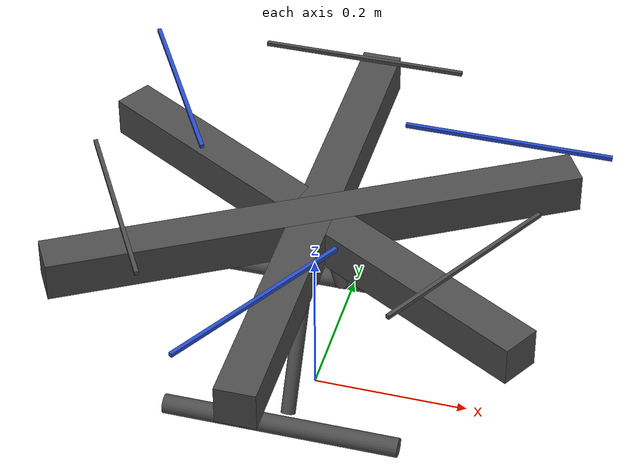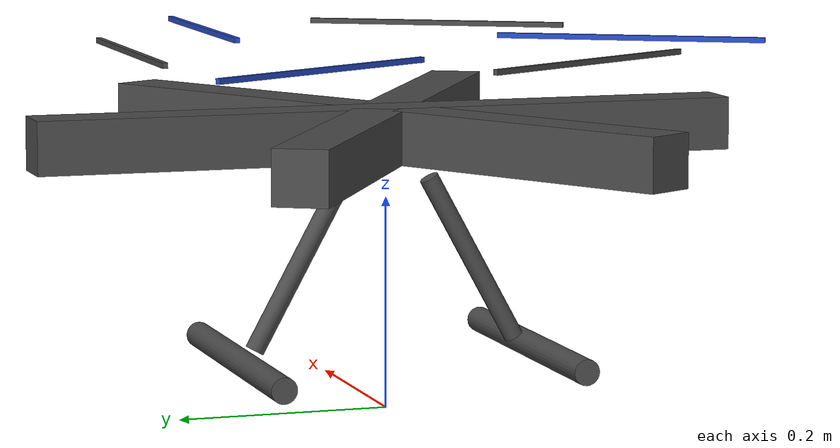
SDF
<sdf version='1.5'>
  <model name='ardvarc_drone'>
    <!-- Body -->
    <pose>0 0 0.26 0 0 0.0</pose>
    <link name='base_link'>
      <pose>0 0 0 0 0 0</pose>
      <inertial>
        <!-- rear reference point X: -100.044mm, CAD offset: 1001.049mm -->
        <!-- top reference point Z: 33.8663mm, CAD offset: 42.8698mm -->
        <pose>0.001005 0 -0.0090035 0 0 0</pose>
        <mass>2.02</mass>
        <inertia>
          <ixx>0.011</ixx>
          <ixy>0</ixy>
          <ixz>0</ixz>
          <iyy>0.015</iyy>
          <iyz>0</iyz>
          <izz>0.021</izz>
        </inertia>
      </inertial>
      <collision name='base_link_collision'>
        <pose>0 0 0.0 0 0 0</pose>
        <geometry>
          <box>
            <size>0.67 0.67 0.15</size>
          </box>
        </geometry>
        <surface>
          <contact>
            <ode>
              <min_depth>0.001</min_depth>
              <max_vel>0</max_vel>
            </ode>
          </contact>
          <friction>
            <ode/>
          </friction>
        </surface>
      </collision>
      <visual name='base_link_visual_1'>
        <pose>0 0 0 0 0 0.52359877559</pose>
        <geometry>
          <box>
            <size>0.67 0.05 0.05</size>
          </box>
        </geometry>
        <material>
          <script>
            <name>Gazebo/DarkGrey</name>
            <uri>file://media/materials/scripts/gazebo.material</uri>
          </script>
        </material>
      </visual>
      <visual name='base_link_visual_2'>
        <pose>0 0 0 0 0 1.57079632679</pose>
        <geometry>
          <box>
            <size>0.67 0.05 0.05</size>
          </box>
        </geometry>
        <material>
          <script>
            <name>Gazebo/DarkGrey</name>
            <uri>file://media/materials/scripts/gazebo.material</uri>
          </script>
        </material>
      </visual>
      <visual name='base_link_visual_3'>
        <pose>0 0 0 0 0 2.61799387799</pose>
        <geometry>
          <box>
            <size>0.67 0.05 0.05</size>
          </box>
        </geometry>
        <material>
          <script>
            <name>Gazebo/DarkGrey</name>
            <uri>file://media/materials/scripts/gazebo.material</uri>
          </script>
        </material>
      </visual>
      <gravity>1</gravity>
      <velocity_decay/>
      <self_collide>0</self_collide>
    </link>

    <link name="camera_link">
      <pose>0.2 0 -0.1 0 1.57 3.14159</pose>
      <inertial>
        <!-- place holder -->
        <mass>0.1</mass>
        <inertia>
          <ixx>0.001</ixx>
          <ixy>0</ixy>
          <ixz>0</ixz>
          <iyy>0.001</iyy>
          <iyz>0</iyz>
          <izz>0.001</izz>
        </inertia>
      </inertial>
      <sensor name="camera_imu" type="imu">
        <always_on>1</always_on>
      </sensor>
      <sensor name="camera" type="camera">
        <pose>0 0 0 0 0 0</pose>
        <camera>
          <horizontal_fov>1.2217304764</horizontal_fov> <!-- 1.2217304764 rad = 70 deg -->
          <image>
            <format>R8G8B8</format>
            <width>1280</width>
            <height>800</height>
          </image>
          <clip>
            <near>0.05</near>
            <far>15000</far>
          </clip>
        </camera>
        <always_on>1</always_on>
        <update_rate>6</update_rate>
        <visualize>false</visualize>
        <plugin name="camera_controller" filename="libgazebo_ros_camera.so">
          <alwaysOn>true</alwaysOn>
          <updateRate>0.0</updateRate>
          <cameraName>usb_cam</cameraName>
          <imageTopicName>image_raw</imageTopicName>
          <cameraInfoTopicName>camera_info</cameraInfoTopicName>
          <frameName>camera_link</frameName>
          <hackBaseline>0.07</hackBaseline>
          <distortionK1>0.0</distortionK1>
          <distortionK2>0.0</distortionK2>
          <distortionK3>0.0</distortionK3>
          <distortionT1>0.0</distortionT1>
          <distortionT2>0.0</distortionT2>
        </plugin>
      </sensor>
    </link>
    <joint name='camera_joint' type='fixed'>
      <child>camera_link</child>
      <parent>base_link</parent>
      <pose>0 0 0 0 0 0</pose>
    </joint>

    <link name="left_leg">
      <inertial>
        <!-- place holder -->
        <pose>0 -0.14314 -0.207252 0 0 0</pose>
        <mass>0.1</mass>
        <inertia>
          <ixx>0.001</ixx>
          <ixy>0</ixy>
          <ixz>0</ixz>
          <iyy>0.001</iyy>
          <iyz>0</iyz>
          <izz>0.001</izz>
        </inertia>
      </inertial>
      <collision name='collision'>
        <pose>-0.005 -0.14314 -0.207252 0 1.56893 0</pose>
        <geometry>
          <cylinder>
            <radius>0.012209</radius>
            <length>0.3</length>
          </cylinder>
        </geometry>
        <surface>
          <friction>
            <ode>
              <mu>1</mu>
              <mu2>1</mu2>
            </ode>
          </friction>
          <contact>
            <ode>
              <kp>1e+8</kp>
              <kd>1</kd>
              <max_vel>0.01</max_vel>
              <min_depth>0.001</min_depth>
            </ode>
          </contact>
        </surface>
      </collision>
      <collision name='collision_bar'>
        <pose>0.00052 -0.08503 -0.121187 -0.501318 0 0</pose>
        <geometry>
          <cylinder>
            <radius>0.00914984</radius>
            <length>0.176893</length>
          </cylinder>
        </geometry>
        <surface>
          <friction>
            <ode>
              <mu>1</mu>
              <mu2>1</mu2>
            </ode>
          </friction>
          <contact>
            <ode>
              <kp>1e+8</kp>
              <kd>1</kd>
              <max_vel>0.01</max_vel>
              <min_depth>0.001</min_depth>
            </ode>
          </contact>
        </surface>
      </collision>
      <visual name='base_link_left_leg'>
        <pose>-0.005 -0.14314 -0.207252 0 1.56893 0</pose>
        <geometry>
          <cylinder>
            <radius>0.012209</radius>
            <length>0.3</length>
          </cylinder>
        </geometry>
        <material>
          <script>
            <name>Gazebo/DarkGrey</name>
            <uri>file://media/materials/scripts/gazebo.material</uri>
          </script>
        </material>
      </visual>
      <visual name='base_link_left_leg_bar'>
        <pose>0.00052 -0.08503 -0.121187 -0.501318 0 0</pose>
        <geometry>
          <cylinder>
            <radius>0.00914984</radius>
            <length>0.176893</length>
          </cylinder>
        </geometry>
        <material>
          <script>
            <name>Gazebo/DarkGrey</name>
            <uri>file://media/materials/scripts/gazebo.material</uri>
          </script>
        </material>
      </visual>
    </link>
    <joint name='left_leg_joint' type='fixed'>
      <child>left_leg</child>
      <parent>base_link</parent>
      <pose>0.00026 -0.040515 -0.048 0 0 0</pose>
    </joint>

    <link name="right_leg">
      <pose>0 0 0 0 0 0</pose>
      <inertial>
        <!-- place holder -->
        <pose>0 0.14314 -0.207252 0 0 0</pose>
        <mass>0.1</mass>
        <inertia>
          <ixx>0.001</ixx>
          <ixy>0</ixy>
          <ixz>0</ixz>
          <iyy>0.001</iyy>
          <iyz>0</iyz>
          <izz>0.001</izz>
        </inertia>
      </inertial>
      <collision name='collision'>
        <pose>-0.005 0.14314 -0.207252 0 1.56893 0</pose>
        <geometry>
          <cylinder>
            <radius>0.012209</radius>
            <length>0.3</length>
          </cylinder>
        </geometry>
        <surface>
          <friction>
            <ode>
              <mu>1</mu>
              <mu2>1</mu2>
            </ode>
          </friction>
          <contact>
            <ode>
              <kp>1e+8</kp>
              <kd>1</kd>
              <max_vel>0.01</max_vel>
              <min_depth>0.001</min_depth>
            </ode>
          </contact>
        </surface>
      </collision>
      <collision name='collision_bar'>
        <pose>0.00052 0.08503 -0.121187 0.501318 0 0</pose>
        <geometry>
          <cylinder>
            <radius>0.00914984</radius>
            <length>0.176893</length>
          </cylinder>
        </geometry>
        <surface>
          <friction>
            <ode>
              <mu>1</mu>
              <mu2>1</mu2>
            </ode>
          </friction>
          <contact>
            <ode>
              <kp>1e+8</kp>
              <kd>1</kd>
              <max_vel>0.01</max_vel>
              <min_depth>0.001</min_depth>
            </ode>
          </contact>
        </surface>
      </collision>
      <visual name='base_link_right_leg'>
        <pose>-0.005 0.14314 -0.207252 0 1.56893 0</pose>
        <geometry>
          <cylinder>
            <radius>0.012209</radius>
            <length>0.3</length>
          </cylinder>
        </geometry>
        <material>
          <script>
            <name>Gazebo/DarkGrey</name>
            <uri>file://media/materials/scripts/gazebo.material</uri>
          </script>
        </material>
      </visual>
      <visual name='base_link_right_leg_bar'>
        <pose>0.00052 0.08503 -0.121187 0.501318 0 0</pose>
        <geometry>
          <cylinder>
            <radius>0.00914984</radius>
            <length>0.176893</length>
          </cylinder>
        </geometry>
        <material>
          <script>
            <name>Gazebo/DarkGrey</name>
            <uri>file://media/materials/scripts/gazebo.material</uri>
          </script>
        </material>
      </visual>
    </link>
    <joint name='right_leg_joint' type='fixed'>
      <child>right_leg</child>
      <parent>base_link</parent>
      <pose>0.00026 0.040515 -0.048 0 0 0</pose>
    </joint>

    <link name='ardvarc_drone/imu_link'>
      <pose>0 0 0 0 0 0</pose>
      <inertial>
        <pose>0 0 0 0 0 0</pose>
        <mass>0.015</mass>
        <inertia>
          <ixx>1e-05</ixx>
          <ixy>0</ixy>
          <ixz>0</ixz>
          <iyy>1e-05</iyy>
          <iyz>0</iyz>
          <izz>1e-05</izz>
        </inertia>
      </inertial>
    </link>
    <joint name='ardvarc_drone/imu_joint' type='revolute'>
      <child>ardvarc_drone/imu_link</child>
      <parent>base_link</parent>
      <axis>
        <xyz>1 0 0</xyz>
        <limit>
          <lower>0</lower>
          <upper>0</upper>
          <effort>0</effort>
          <velocity>0</velocity>
        </limit>
        <dynamics>
          <spring_reference>0</spring_reference>
          <spring_stiffness>0</spring_stiffness>
        </dynamics>
        <use_parent_model_frame>1</use_parent_model_frame>
      </axis>
    </joint>
    <link name='rotor_3'>
      <pose>0.211396 0.119762 0.082219 0 0 0</pose>
      <inertial>
        <pose>0 0 0 0 0 0</pose>
        <mass>0.005</mass>
        <inertia>
          <ixx>9.75e-07</ixx>
          <ixy>0</ixy>
          <ixz>0</ixz>
          <iyy>0.000273104</iyy>
          <iyz>0</iyz>
          <izz>0.000274004</izz>
        </inertia>
      </inertial>
      <collision name='rotor_3_collision'>
        <pose>0 0 0 0 0 0</pose>
        <geometry>
          <cylinder>
            <length>0.005</length>
            <radius>0.128</radius>
          </cylinder>
        </geometry>
        <surface>
          <contact>
            <ode/>
          </contact>
          <friction>
            <ode/>
          </friction>
        </surface>
      </collision>
      <visual name='rotor_3_visual'>
        <pose>0 0 0 0 0 0</pose>
        <geometry>
          <box>
            <size>0.256 0.005 0.005</size>
          </box>
        </geometry>
        <material>
          <script>
            <name>Gazebo/Blue</name>
            <uri>file://media/materials/scripts/gazebo.material</uri>
          </script>
        </material>
      </visual>
      <gravity>1</gravity>
      <velocity_decay/>
      <self_collide>0</self_collide>
    </link>
    <joint name='rotor_3_joint' type='revolute'>
      <child>rotor_3</child>
      <parent>base_link</parent>
      <axis>
        <xyz>0 0 1</xyz>
        <limit>
          <lower>-1e+16</lower>
          <upper>1e+16</upper>
          <effort>10</effort>
          <velocity>-1</velocity>
        </limit>
        <dynamics>
          <damping>0.005</damping>
        </dynamics>
        <use_parent_model_frame>1</use_parent_model_frame>
      </axis>
      <physics>
        <ode>
          <implicit_spring_damper>1</implicit_spring_damper>
        </ode>
      </physics>
    </joint>
    <link name='rotor_0'>
      <pose>-0.209396 0.122762 0.082219 0 0 2.09439510239</pose>
      <inertial>
        <pose>0 0 0 0 0 0</pose>
        <mass>0.005</mass>
        <inertia>
          <ixx>9.75e-07</ixx>
          <ixy>0</ixy>
          <ixz>0</ixz>
          <iyy>0.000273104</iyy>
          <iyz>0</iyz>
          <izz>0.000274004</izz>
        </inertia>
      </inertial>
      <collision name='rotor_0_collision'>
        <pose>0 0 0 0 0 0</pose>
        <geometry>
          <cylinder>
            <length>0.005</length>
            <radius>0.128</radius>
          </cylinder>
        </geometry>
        <surface>
          <contact>
            <ode/>
          </contact>
          <friction>
            <ode/>
          </friction>
        </surface>
      </collision>
      <visual name='rotor_0_visual'>
        <pose>0 0 0 0 0 0</pose>
        <geometry>
          <box>
            <size>0.256 0.005 0.005</size>
          </box>
        </geometry>
        <material>
          <script>
            <name>Gazebo/Blue</name>
            <uri>file://media/materials/scripts/gazebo.material</uri>
          </script>
        </material>
      </visual>
      <gravity>1</gravity>
      <velocity_decay/>
      <self_collide>0</self_collide>
    </link>
    <joint name='rotor_0_joint' type='revolute'>
      <child>rotor_0</child>
      <parent>base_link</parent>
      <axis>
        <xyz>0 0 1</xyz>
        <limit>
          <lower>-1e+16</lower>
          <upper>1e+16</upper>
          <effort>10</effort>
          <velocity>-1</velocity>
        </limit>
        <dynamics>
          <damping>0.005</damping>
        </dynamics>
        <use_parent_model_frame>1</use_parent_model_frame>
      </axis>
      <physics>
        <ode>
          <implicit_spring_damper>1</implicit_spring_damper>
        </ode>
      </physics>
    </joint>
    <link name='rotor_4'>
      <pose>-0.00187896 0.242705 0.0822169 0 0 0</pose>
      <inertial>
        <pose>0 0 0 0 0 0</pose>
        <mass>0.005</mass>
        <inertia>
          <ixx>9.75e-07</ixx>
          <ixy>0</ixy>
          <ixz>0</ixz>
          <iyy>0.000273104</iyy>
          <iyz>0</iyz>
          <izz>0.000274004</izz>
        </inertia>
      </inertial>
      <collision name='rotor_4_collision'>
        <pose>0 0 0 0 0 0</pose>
        <geometry>
          <cylinder>
            <length>0.005</length>
            <radius>0.128</radius>
          </cylinder>
        </geometry>
        <surface>
          <contact>
            <ode/>
          </contact>
          <friction>
            <ode/>
          </friction>
        </surface>
      </collision>
      <visual name='rotor_4_visual'>
        <pose>0 0 0 0 0 0</pose>
        <geometry>
          <box>
            <size>0.256 0.005 0.005</size>
          </box>
        </geometry>
        <material>
          <script>
            <name>Gazebo/DarkGrey</name>
            <uri>file://media/materials/scripts/gazebo.material</uri>
          </script>
        </material>
      </visual>
      <gravity>1</gravity>
      <velocity_decay/>
      <self_collide>0</self_collide>
    </link>
    <joint name='rotor_4_joint' type='revolute'>
      <child>rotor_4</child>
      <parent>base_link</parent>
      <axis>
        <xyz>0 0 1</xyz>
        <limit>
          <lower>-1e+16</lower>
          <upper>1e+16</upper>
          <effort>10</effort>
          <velocity>-1</velocity>
        </limit>
        <dynamics>
          <damping>0.005</damping>
        </dynamics>
        <use_parent_model_frame>1</use_parent_model_frame>
      </axis>
      <physics>
        <ode>
          <implicit_spring_damper>1</implicit_spring_damper>
        </ode>
      </physics>
    </joint>
    <link name='rotor_1'>
      <pose>0.211396 -0.119762 0.082219 0 0 -2.09439510239</pose>
      <inertial>
        <pose>0 0 0 0 0 0</pose>
        <mass>0.005</mass>
        <inertia>
          <ixx>9.75e-07</ixx>
          <ixy>0</ixy>
          <ixz>0</ixz>
          <iyy>0.000273104</iyy>
          <iyz>0</iyz>
          <izz>0.000274004</izz>
        </inertia>
      </inertial>
      <collision name='rotor_1_collision'>
        <pose>0 0 0 0 0 0</pose>
        <geometry>
          <cylinder>
            <length>0.005</length>
            <radius>0.128</radius>
          </cylinder>
        </geometry>
        <surface>
          <contact>
            <ode/>
          </contact>
          <friction>
            <ode/>
          </friction>
        </surface>
      </collision>
      <visual name='rotor_1_visual'>
        <pose>0 0 0 0 0 0</pose>
        <geometry>
          <box>
            <size>0.256 0.005 0.005</size>
          </box>
        </geometry>
        <material>
          <script>
            <name>Gazebo/DarkGrey</name>
            <uri>file://media/materials/scripts/gazebo.material</uri>
          </script>
        </material>
      </visual>
      <gravity>1</gravity>
      <velocity_decay/>
      <self_collide>0</self_collide>
    </link>
    <joint name='rotor_1_joint' type='revolute'>
      <child>rotor_1</child>
      <parent>base_link</parent>
      <axis>
        <xyz>0 0 1</xyz>
        <limit>
          <lower>-1e+16</lower>
          <upper>1e+16</upper>
          <effort>10</effort>
          <velocity>-1</velocity>
        </limit>
        <dynamics>
          <damping>0.005</damping>
        </dynamics>
        <use_parent_model_frame>1</use_parent_model_frame>
      </axis>
      <physics>
        <ode>
          <implicit_spring_damper>1</implicit_spring_damper>
        </ode>
      </physics>
    </joint>

    <link name='rotor_5'>
      <pose>-0.00187896 -0.242705 0.0822169 0 0 -2.09439510239</pose>
      <inertial>
        <pose>0 0 0 0 0 0</pose>
        <mass>0.005</mass>
        <inertia>
          <ixx>9.75e-07</ixx>
          <ixy>0</ixy>
          <ixz>0</ixz>
          <iyy>0.000273104</iyy>
          <iyz>0</iyz>
          <izz>0.000274004</izz>
        </inertia>
      </inertial>
      <collision name='rotor_5_collision'>
        <pose>0 0 0 0 0 0</pose>
        <geometry>
          <cylinder>
            <length>0.005</length>
            <radius>0.128</radius>
          </cylinder>
        </geometry>
        <surface>
          <contact>
            <ode/>
          </contact>
          <friction>
            <ode/>
          </friction>
        </surface>
      </collision>
      <visual name='rotor_5_visual'>
        <pose>0 0 0 0 0 0</pose>
        <geometry>
          <box>
            <size>0.256 0.005 0.005</size>
          </box>
        </geometry>
        <material>
          <script>
            <name>Gazebo/Blue</name>
            <uri>file://media/materials/scripts/gazebo.material</uri>
          </script>
        </material>
      </visual>
      <gravity>1</gravity>
      <velocity_decay/>
      <self_collide>0</self_collide>
    </link>
    <joint name='rotor_5_joint' type='revolute'>
      <child>rotor_5</child>
      <parent>base_link</parent>
      <axis>
        <xyz>0 0 1</xyz>
        <limit>
          <lower>-1e+16</lower>
          <upper>1e+16</upper>
          <effort>10</effort>
          <velocity>-1</velocity>
        </limit>
        <dynamics>
          <damping>0.005</damping>
        </dynamics>
        <use_parent_model_frame>1</use_parent_model_frame>
      </axis>
      <physics>
        <ode>
          <implicit_spring_damper>1</implicit_spring_damper>
        </ode>
      </physics>
    </joint>
    <link name='rotor_2'>
      <pose>-0.209396 -0.122762 0.082219 0 0 2.09439510239</pose>
      <inertial>
        <pose>0 0 0 0 0 0</pose>
        <mass>0.005</mass>
        <inertia>
          <ixx>9.75e-07</ixx>
          <ixy>0</ixy>
          <ixz>0</ixz>
          <iyy>0.000273104</iyy>
          <iyz>0</iyz>
          <izz>0.000274004</izz>
        </inertia>
      </inertial>
      <collision name='rotor_2_collision'>
        <pose>0 0 0 0 0 0</pose>
        <geometry>
          <cylinder>
            <length>0.005</length>
            <radius>0.128</radius>
          </cylinder>
        </geometry>
        <surface>
          <contact>
            <ode/>
          </contact>
          <friction>
            <ode/>
          </friction>
        </surface>
      </collision>
      <visual name='rotor_2_visual'>
        <pose>0 0 0 0 0 0</pose>
        <geometry>
          <box>
            <size>0.256 0.005 0.005</size>
          </box>
        </geometry>
        <material>
          <script>
            <name>Gazebo/DarkGrey</name>
            <uri>file://media/materials/scripts/gazebo.material</uri>
          </script>
        </material>
      </visual>
      <gravity>1</gravity>
      <velocity_decay/>
      <self_collide>0</self_collide>
    </link>
    <joint name='rotor_2_joint' type='revolute'>
      <child>rotor_2</child>
      <parent>base_link</parent>
      <axis>
        <xyz>0 0 1</xyz>
        <limit>
          <lower>-1e+16</lower>
          <upper>1e+16</upper>
          <effort>10</effort>
          <velocity>-1</velocity>
        </limit>
        <dynamics>
          <damping>0.005</damping>
        </dynamics>
        <use_parent_model_frame>1</use_parent_model_frame>
      </axis>
      <physics>
        <ode>
          <implicit_spring_damper>1</implicit_spring_damper>
        </ode>
      </physics>
    </joint>

    <link name="gps_link">
      <pose>0 0 0 0 0 0</pose>
      <inertial>
        <pose>0 0 0 0 0 0</pose>
        <mass>0.015</mass>
        <inertia>
          <ixx>1e-05</ixx>
          <ixy>0</ixy>
          <ixz>0</ixz>
          <iyy>1e-05</iyy>
          <iyz>0</iyz>
          <izz>1e-05</izz>
        </inertia>
      </inertial>
      <visual name="visual">
        <geometry>
          <cylinder>
            <radius>0.01</radius>
            <length>0.002</length>
          </cylinder>
        </geometry>
        <material>
          <script>
            <name>Gazebo/Black</name>
          </script>
        </material>
      </visual>
      <sensor name="gps" type="gps">
        <pose>0 0 0 0 0 0</pose>
        <update_rate>5.0</update_rate>
        <always_on>true</always_on>
        <visualize>false</visualize>
        <plugin name="gps_plugin" filename="libgazebo_gps_plugin.so">
          <robotNamespace></robotNamespace>
          <gpsNoise>false</gpsNoise>
          <gpsXYRandomWalk>2.0</gpsXYRandomWalk>
          <gpsZRandomWalk>4.0</gpsZRandomWalk>
          <gpsXYNoiseDensity>2.0e-4</gpsXYNoiseDensity>
          <gpsZNoiseDensity>4.0e-4</gpsZNoiseDensity>
          <gpsVXYNoiseDensity>0.2</gpsVXYNoiseDensity>
          <gpsVZNoiseDensity>0.4</gpsVZNoiseDensity>
          <topic>gps</topic>
        </plugin>
      </sensor>
    </link>
    <joint name='gps_joint' type='fixed'>
      <child>gps_link</child>
      <parent>base_link</parent>
    </joint>

    <plugin name='rosbag' filename='libgazebo_multirotor_base_plugin.so'>
      <robotNamespace></robotNamespace>
      <linkName>base_link</linkName>
      <rotorVelocitySlowdownSim>10</rotorVelocitySlowdownSim>
    </plugin>
    <plugin name='front_right_motor_model' filename='libgazebo_motor_model.so'>
      <robotNamespace></robotNamespace>
      <jointName>rotor_0_joint</jointName>
      <linkName>rotor_0</linkName>
      <turningDirection>cw</turningDirection>
      <timeConstantUp>0.0125</timeConstantUp>
      <timeConstantDown>0.025</timeConstantDown>
      <maxRotVelocity>1500</maxRotVelocity>
      <motorConstant>8.54858e-06</motorConstant>
      <momentConstant>0.06</momentConstant>
      <commandSubTopic>/gazebo/command/motor_speed</commandSubTopic>
      <motorNumber>5</motorNumber>
      <rotorDragCoefficient>0.000806428</rotorDragCoefficient>
      <rollingMomentCoefficient>1e-06</rollingMomentCoefficient>
      <motorSpeedPubTopic>/motor_speed/5</motorSpeedPubTopic>
      <rotorVelocitySlowdownSim>10</rotorVelocitySlowdownSim>
    </plugin>
    <plugin name='back_left_motor_model' filename='libgazebo_motor_model.so'>
      <robotNamespace></robotNamespace>
      <jointName>rotor_1_joint</jointName>
      <linkName>rotor_1</linkName>
      <turningDirection>ccw</turningDirection>
      <timeConstantUp>0.0125</timeConstantUp>
      <timeConstantDown>0.025</timeConstantDown>
      <maxRotVelocity>1500</maxRotVelocity>
      <motorConstant>8.54858e-06</motorConstant>
      <momentConstant>0.06</momentConstant>
      <commandSubTopic>/gazebo/command/motor_speed</commandSubTopic>
      <motorNumber>4</motorNumber>
      <rotorDragCoefficient>0.000806428</rotorDragCoefficient>
      <rollingMomentCoefficient>1e-06</rollingMomentCoefficient>
      <motorSpeedPubTopic>/motor_speed/4</motorSpeedPubTopic>
      <rotorVelocitySlowdownSim>10</rotorVelocitySlowdownSim>
    </plugin>
    <plugin name='front_left_motor_model' filename='libgazebo_motor_model.so'>
      <robotNamespace></robotNamespace>
      <jointName>rotor_2_joint</jointName>
      <linkName>rotor_2</linkName>
      <turningDirection>ccw</turningDirection>
      <timeConstantUp>0.0125</timeConstantUp>
      <timeConstantDown>0.025</timeConstantDown>
      <maxRotVelocity>1500</maxRotVelocity>
      <motorConstant>8.54858e-06</motorConstant>
      <momentConstant>0.06</momentConstant>
      <commandSubTopic>/gazebo/command/motor_speed</commandSubTopic>
      <motorNumber>3</motorNumber>
      <rotorDragCoefficient>0.000806428</rotorDragCoefficient>
      <rollingMomentCoefficient>1e-06</rollingMomentCoefficient>
      <motorSpeedPubTopic>/motor_speed/3</motorSpeedPubTopic>
      <rotorVelocitySlowdownSim>10</rotorVelocitySlowdownSim>
    </plugin>
    <plugin name='back_right_motor_model' filename='libgazebo_motor_model.so'>
      <robotNamespace></robotNamespace>
      <jointName>rotor_3_joint</jointName>
      <linkName>rotor_3</linkName>
      <turningDirection>cw</turningDirection>
      <timeConstantUp>0.0125</timeConstantUp>
      <timeConstantDown>0.025</timeConstantDown>
      <maxRotVelocity>1500</maxRotVelocity>
      <motorConstant>8.54858e-06</motorConstant>
      <momentConstant>0.06</momentConstant>
      <commandSubTopic>/gazebo/command/motor_speed</commandSubTopic>
      <motorNumber>2</motorNumber>
      <rotorDragCoefficient>0.000806428</rotorDragCoefficient>
      <rollingMomentCoefficient>1e-06</rollingMomentCoefficient>
      <motorSpeedPubTopic>/motor_speed/2</motorSpeedPubTopic>
      <rotorVelocitySlowdownSim>10</rotorVelocitySlowdownSim>
    </plugin>
    <plugin name='back_left_motor_model' filename='libgazebo_motor_model.so'>
      <robotNamespace></robotNamespace>
      <jointName>rotor_4_joint</jointName>
      <linkName>rotor_4</linkName>
      <turningDirection>ccw</turningDirection>
      <timeConstantUp>0.0125</timeConstantUp>
      <timeConstantDown>0.025</timeConstantDown>
      <maxRotVelocity>1500</maxRotVelocity>
      <motorConstant>8.54858e-06</motorConstant>
      <momentConstant>0.06</momentConstant>
      <commandSubTopic>/gazebo/command/motor_speed</commandSubTopic>
      <motorNumber>1</motorNumber>
      <rotorDragCoefficient>0.000806428</rotorDragCoefficient>
      <rollingMomentCoefficient>1e-06</rollingMomentCoefficient>
      <motorSpeedPubTopic>/motor_speed/1</motorSpeedPubTopic>
      <rotorVelocitySlowdownSim>10</rotorVelocitySlowdownSim>
    </plugin>
    <plugin name='front_left_motor_model' filename='libgazebo_motor_model.so'>
      <robotNamespace></robotNamespace>
      <jointName>rotor_5_joint</jointName>
      <linkName>rotor_5</linkName>
      <turningDirection>cw</turningDirection>
      <timeConstantUp>0.0125</timeConstantUp>
      <timeConstantDown>0.025</timeConstantDown>
      <maxRotVelocity>1500</maxRotVelocity>
      <motorConstant>8.54858e-06</motorConstant>
      <momentConstant>0.06</momentConstant>
      <commandSubTopic>/gazebo/command/motor_speed</commandSubTopic>
      <motorNumber>0</motorNumber>
      <rotorDragCoefficient>0.000806428</rotorDragCoefficient>
      <rollingMomentCoefficient>1e-06</rollingMomentCoefficient>
      <motorSpeedPubTopic>/motor_speed/0</motorSpeedPubTopic>
      <rotorVelocitySlowdownSim>10</rotorVelocitySlowdownSim>
    </plugin>
    <plugin name='groundtruth_plugin' filename='libgazebo_groundtruth_plugin.so'>
      <robotNamespace/>
    </plugin>
    <plugin name='magnetometer_plugin' filename='libgazebo_magnetometer_plugin.so'>
      <robotNamespace/>
      <pubRate>100</pubRate>
      <noiseDensity>0.00004</noiseDensity>
      <randomWalk>6.4e-07</randomWalk>
      <biasCorrelationTime>600</biasCorrelationTime>
      <magTopic>/mag</magTopic>
    </plugin>
    <plugin name='barometer_plugin' filename='libgazebo_barometer_plugin.so'>
      <robotNamespace/>
      <pubRate>50</pubRate>
      <baroTopic>/baro</baroTopic>
    </plugin>
    <plugin name='mavlink_interface' filename='libgazebo_mavlink_interface.so'>
      <robotNamespace></robotNamespace>
      <imuSubTopic>/imu</imuSubTopic>
      <magSubTopic>/mag</magSubTopic>
      <baroSubTopic>/baro</baroSubTopic>
      <mavlink_addr>INADDR_ANY</mavlink_addr>
      <mavlink_tcp_port>4560</mavlink_tcp_port>
      <mavlink_udp_port>14560</mavlink_udp_port>
      <serialEnabled>0</serialEnabled>
      <serialDevice>/dev/ttyACM0</serialDevice>
      <baudRate>921600</baudRate>
      <qgc_addr>INADDR_ANY</qgc_addr>
      <qgc_udp_port>14550</qgc_udp_port>
      <sdk_addr>INADDR_ANY</sdk_addr>
      <sdk_udp_port>14540</sdk_udp_port>
      <hil_mode>0</hil_mode>
      <hil_state_level>false</hil_state_level>
      <enable_lockstep>true</enable_lockstep>
      <use_tcp>true</use_tcp>
      <motorSpeedCommandPubTopic>/gazebo/command/motor_speed</motorSpeedCommandPubTopic>
      <control_channels>
        <channel name="rotor0">
          <input_index>0</input_index>
          <input_offset>0</input_offset>
          <input_scaling>1500</input_scaling>
          <zero_position_disarmed>0</zero_position_disarmed>
          <zero_position_armed>100</zero_position_armed>
          <joint_control_type>velocity</joint_control_type>
        </channel>
        <channel name="rotor1">
          <input_index>1</input_index>
          <input_offset>0</input_offset>
          <input_scaling>1500</input_scaling>
          <zero_position_disarmed>0</zero_position_disarmed>
          <zero_position_armed>100</zero_position_armed>
          <joint_control_type>velocity</joint_control_type>
        </channel>
        <channel name="rotor2">
          <input_index>2</input_index>
          <input_offset>0</input_offset>
          <input_scaling>1500</input_scaling>
          <zero_position_disarmed>0</zero_position_disarmed>
          <zero_position_armed>100</zero_position_armed>
          <joint_control_type>velocity</joint_control_type>
        </channel>
        <channel name="rotor3">
          <input_index>3</input_index>
          <input_offset>0</input_offset>
          <input_scaling>1500</input_scaling>
          <zero_position_disarmed>0</zero_position_disarmed>
          <zero_position_armed>100</zero_position_armed>
          <joint_control_type>velocity</joint_control_type>
        </channel>
        <channel name="rotor4">
          <input_index>4</input_index>
          <input_offset>0</input_offset>
          <input_scaling>1500</input_scaling>
          <zero_position_disarmed>0</zero_position_disarmed>
          <zero_position_armed>100</zero_position_armed>
          <joint_control_type>velocity</joint_control_type>
        </channel>
       <channel name="rotor5">
          <input_index>5</input_index>
          <input_offset>0</input_offset>
          <input_scaling>1500</input_scaling>
          <zero_position_disarmed>0</zero_position_disarmed>
          <zero_position_armed>100</zero_position_armed>
          <joint_control_type>velocity</joint_control_type>
        </channel>
      </control_channels>
    </plugin>
    <static>0</static>
    <plugin name='gazebo_imu_plugin' filename='libgazebo_imu_plugin.so'>
      <robotNamespace></robotNamespace>
      <linkName>ardvarc_drone/imu_link</linkName>
      <imuTopic>/imu</imuTopic>
      <gyroscopeNoiseDensity>0.00003394</gyroscopeNoiseDensity>
      <gyroscopeRandomWalk>3.8785e-06</gyroscopeRandomWalk>
      <gyroscopeBiasCorrelationTime>1000.0</gyroscopeBiasCorrelationTime>
      <gyroscopeTurnOnBiasSigma>0</gyroscopeTurnOnBiasSigma>
      <accelerometerNoiseDensity>0.0004</accelerometerNoiseDensity>
      <accelerometerRandomWalk>0.0006</accelerometerRandomWalk>
      <accelerometerBiasCorrelationTime>300.0</accelerometerBiasCorrelationTime>
      <accelerometerTurnOnBiasSigma>0</accelerometerTurnOnBiasSigma>
    </plugin>
  </model>
</sdf>
